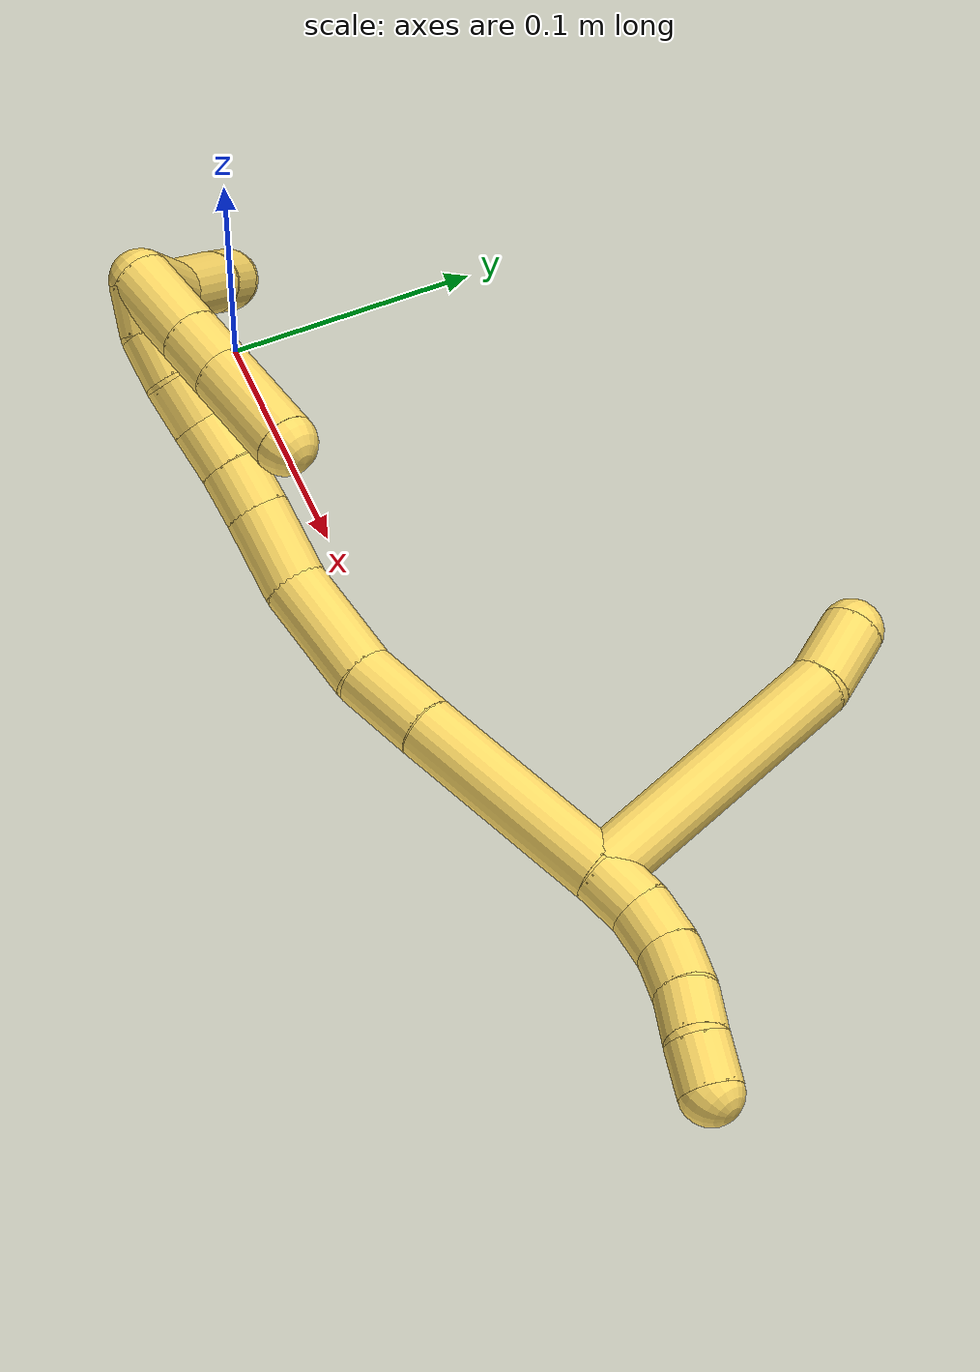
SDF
<sdf version="1.7">
 <world name="default">
  <model name="5">
   <static>0</static>
   <link name="5">
    <collision name="collision-cylinder-e_1_2_8">
     <pose>0.00365 0.059589 -0.008405 -1.71093 0.060584 -0.069723</pose>
     <geometry><cylinder><radius>0.0125</radius><length>0.120578</length></cylinder></geometry>
     <surface>
      <friction><ode><mu>1.16</mu><mu2>1.16</mu2><slip1>0</slip1><slip2>0</slip2></ode></friction>
      <contact><ode><kp>1e+06</kp><kd>1</kd><max_vel>0</max_vel><min_depth>0.001</min_depth></ode></contact>
     </surface>
    </collision>
    <visual name="visual-cylinder-e_1_2_8">
     <pose>0.00365 0.059589 -0.008405 -1.71093 0.060584 -0.069723</pose>
     <geometry><cylinder><radius>0.0125</radius><length>0.120578</length></cylinder></geometry>
     <material><ambient>1 0.858824 0.4 1</ambient></material>
    </visual>
    <collision name="collision-cylinder-e_2_8_6">
     <pose>0.008146 0.132563 -0.022854 -1.99487 0.057484 -0.088988</pose>
     <geometry><cylinder><radius>0.0125</radius><length>0.029422</length></cylinder></geometry>
     <surface>
      <friction><ode><mu>1.16</mu><mu2>1.16</mu2><slip1>0</slip1><slip2>0</slip2></ode></friction>
      <contact><ode><kp>1e+06</kp><kd>1</kd><max_vel>0</max_vel><min_depth>0.001</min_depth></ode></contact>
     </surface>
    </collision>
    <visual name="visual-cylinder-e_2_8_6">
     <pose>0.008146 0.132563 -0.022854 -1.99487 0.057484 -0.088988</pose>
     <geometry><cylinder><radius>0.0125</radius><length>0.029422</length></cylinder></geometry>
     <material><ambient>1 0.858824 0.4 1</ambient></material>
    </visual>
    <collision name="collision-cylinder-e_1_2_9">
     <pose>0.001621 0.00127 0.009786 -0.129015 0.162816 -0.010541</pose>
     <geometry><cylinder><radius>0.0125</radius><length>0.02</length></cylinder></geometry>
     <surface>
      <friction><ode><mu>1.16</mu><mu2>1.16</mu2><slip1>0</slip1><slip2>0</slip2></ode></friction>
      <contact><ode><kp>1e+06</kp><kd>1</kd><max_vel>0</max_vel><min_depth>0.001</min_depth></ode></contact>
     </surface>
    </collision>
    <visual name="visual-cylinder-e_1_2_9">
     <pose>0.001621 0.00127 0.009786 -0.129015 0.162816 -0.010541</pose>
     <geometry><cylinder><radius>0.0125</radius><length>0.02</length></cylinder></geometry>
     <material><ambient>1 0.858824 0.4 1</ambient></material>
    </visual>
    <collision name="collision-cylinder-e_2_9_10">
     <pose>0.003597 0.001166 0.02947 0.137873 0.035489 0.002451</pose>
     <geometry><cylinder><radius>0.0125</radius><length>0.02</length></cylinder></geometry>
     <surface>
      <friction><ode><mu>1.16</mu><mu2>1.16</mu2><slip1>0</slip1><slip2>0</slip2></ode></friction>
      <contact><ode><kp>1e+06</kp><kd>1</kd><max_vel>0</max_vel><min_depth>0.001</min_depth></ode></contact>
     </surface>
    </collision>
    <visual name="visual-cylinder-e_2_9_10">
     <pose>0.003597 0.001166 0.02947 0.137873 0.035489 0.002451</pose>
     <geometry><cylinder><radius>0.0125</radius><length>0.02</length></cylinder></geometry>
     <material><ambient>1 0.858824 0.4 1</ambient></material>
    </visual>
    <collision name="collision-cylinder-e_3_10_11">
     <pose>0.003022 -0.003811 0.048651 0.370248 -0.093076 -0.017442</pose>
     <geometry><cylinder><radius>0.0125</radius><length>0.02</length></cylinder></geometry>
     <surface>
      <friction><ode><mu>1.16</mu><mu2>1.16</mu2><slip1>0</slip1><slip2>0</slip2></ode></friction>
      <contact><ode><kp>1e+06</kp><kd>1</kd><max_vel>0</max_vel><min_depth>0.001</min_depth></ode></contact>
     </surface>
    </collision>
    <visual name="visual-cylinder-e_3_10_11">
     <pose>0.003022 -0.003811 0.048651 0.370248 -0.093076 -0.017442</pose>
     <geometry><cylinder><radius>0.0125</radius><length>0.02</length></cylinder></geometry>
     <material><ambient>1 0.858824 0.4 1</ambient></material>
    </visual>
    <collision name="collision-cylinder-e_4_11_12">
     <pose>0.001843 -0.012181 0.06672 0.497148 -0.025016 -0.00635</pose>
     <geometry><cylinder><radius>0.0125</radius><length>0.02</length></cylinder></geometry>
     <surface>
      <friction><ode><mu>1.16</mu><mu2>1.16</mu2><slip1>0</slip1><slip2>0</slip2></ode></friction>
      <contact><ode><kp>1e+06</kp><kd>1</kd><max_vel>0</max_vel><min_depth>0.001</min_depth></ode></contact>
     </surface>
    </collision>
    <visual name="visual-cylinder-e_4_11_12">
     <pose>0.001843 -0.012181 0.06672 0.497148 -0.025016 -0.00635</pose>
     <geometry><cylinder><radius>0.0125</radius><length>0.02</length></cylinder></geometry>
     <material><ambient>1 0.858824 0.4 1</ambient></material>
    </visual>
    <collision name="collision-cylinder-e_5_12_5">
     <pose>0.003853 -0.020887 0.084416 0.416185 0.228012 0.048345</pose>
     <geometry><cylinder><radius>0.0125</radius><length>0.02</length></cylinder></geometry>
     <surface>
      <friction><ode><mu>1.16</mu><mu2>1.16</mu2><slip1>0</slip1><slip2>0</slip2></ode></friction>
      <contact><ode><kp>1e+06</kp><kd>1</kd><max_vel>0</max_vel><min_depth>0.001</min_depth></ode></contact>
     </surface>
    </collision>
    <visual name="visual-cylinder-e_5_12_5">
     <pose>0.003853 -0.020887 0.084416 0.416185 0.228012 0.048345</pose>
     <geometry><cylinder><radius>0.0125</radius><length>0.02</length></cylinder></geometry>
     <material><ambient>1 0.858824 0.4 1</ambient></material>
    </visual>
    <collision name="collision-cylinder-e_1_2_13">
     <pose>-0.002311 -0.00653 -0.043559 2.99279 -0.052423 -0.676416</pose>
     <geometry><cylinder><radius>0.0125</radius><length>0.088213</length></cylinder></geometry>
     <surface>
      <friction><ode><mu>1.16</mu><mu2>1.16</mu2><slip1>0</slip1><slip2>0</slip2></ode></friction>
      <contact><ode><kp>1e+06</kp><kd>1</kd><max_vel>0</max_vel><min_depth>0.001</min_depth></ode></contact>
     </surface>
    </collision>
    <visual name="visual-cylinder-e_1_2_13">
     <pose>-0.002311 -0.00653 -0.043559 2.99279 -0.052423 -0.676416</pose>
     <geometry><cylinder><radius>0.0125</radius><length>0.088213</length></cylinder></geometry>
     <material><ambient>1 0.858824 0.4 1</ambient></material>
    </visual>
    <collision name="collision-cylinder-e_2_13_14">
     <pose>-0.004737 -0.014934 -0.103602 3.02842 -0.006889 -0.121462</pose>
     <geometry><cylinder><radius>0.0125</radius><length>0.03318</length></cylinder></geometry>
     <surface>
      <friction><ode><mu>1.16</mu><mu2>1.16</mu2><slip1>0</slip1><slip2>0</slip2></ode></friction>
      <contact><ode><kp>1e+06</kp><kd>1</kd><max_vel>0</max_vel><min_depth>0.001</min_depth></ode></contact>
     </surface>
    </collision>
    <visual name="visual-cylinder-e_2_13_14">
     <pose>-0.004737 -0.014934 -0.103602 3.02842 -0.006889 -0.121462</pose>
     <geometry><cylinder><radius>0.0125</radius><length>0.03318</length></cylinder></geometry>
     <material><ambient>1 0.858824 0.4 1</ambient></material>
    </visual>
    <collision name="collision-cylinder-e_3_14_15">
     <pose>-0.00688 -0.015476 -0.142974 -3.08349 -0.088273 1.97762</pose>
     <geometry><cylinder><radius>0.0125</radius><length>0.046031</length></cylinder></geometry>
     <surface>
      <friction><ode><mu>1.16</mu><mu2>1.16</mu2><slip1>0</slip1><slip2>0</slip2></ode></friction>
      <contact><ode><kp>1e+06</kp><kd>1</kd><max_vel>0</max_vel><min_depth>0.001</min_depth></ode></contact>
     </surface>
    </collision>
    <visual name="visual-cylinder-e_3_14_15">
     <pose>-0.00688 -0.015476 -0.142974 -3.08349 -0.088273 1.97762</pose>
     <geometry><cylinder><radius>0.0125</radius><length>0.046031</length></cylinder></geometry>
     <material><ambient>1 0.858824 0.4 1</ambient></material>
    </visual>
    <collision name="collision-cylinder-e_4_15_16">
     <pose>-0.014663 -0.011822 -0.1807 -2.98631 -0.365868 2.34543</pose>
     <geometry><cylinder><radius>0.0125</radius><length>0.032168</length></cylinder></geometry>
     <surface>
      <friction><ode><mu>1.16</mu><mu2>1.16</mu2><slip1>0</slip1><slip2>0</slip2></ode></friction>
      <contact><ode><kp>1e+06</kp><kd>1</kd><max_vel>0</max_vel><min_depth>0.001</min_depth></ode></contact>
     </surface>
    </collision>
    <visual name="visual-cylinder-e_4_15_16">
     <pose>-0.014663 -0.011822 -0.1807 -2.98631 -0.365868 2.34543</pose>
     <geometry><cylinder><radius>0.0125</radius><length>0.032168</length></cylinder></geometry>
     <material><ambient>1 0.858824 0.4 1</ambient></material>
    </visual>
    <collision name="collision-cylinder-e_5_16_17">
     <pose>-0.024208 -0.008428 -0.204795 -3.02646 -0.386361 2.56862</pose>
     <geometry><cylinder><radius>0.0125</radius><length>0.020119</length></cylinder></geometry>
     <surface>
      <friction><ode><mu>1.16</mu><mu2>1.16</mu2><slip1>0</slip1><slip2>0</slip2></ode></friction>
      <contact><ode><kp>1e+06</kp><kd>1</kd><max_vel>0</max_vel><min_depth>0.001</min_depth></ode></contact>
     </surface>
    </collision>
    <visual name="visual-cylinder-e_5_16_17">
     <pose>-0.024208 -0.008428 -0.204795 -3.02646 -0.386361 2.56862</pose>
     <geometry><cylinder><radius>0.0125</radius><length>0.020119</length></cylinder></geometry>
     <material><ambient>1 0.858824 0.4 1</ambient></material>
    </visual>
    <collision name="collision-cylinder-e_6_17_18">
     <pose>-0.031427 -0.00684 -0.223475 -3.08669 -0.348397 2.83203</pose>
     <geometry><cylinder><radius>0.0125</radius><length>0.020082</length></cylinder></geometry>
     <surface>
      <friction><ode><mu>1.16</mu><mu2>1.16</mu2><slip1>0</slip1><slip2>0</slip2></ode></friction>
      <contact><ode><kp>1e+06</kp><kd>1</kd><max_vel>0</max_vel><min_depth>0.001</min_depth></ode></contact>
     </surface>
    </collision>
    <visual name="visual-cylinder-e_6_17_18">
     <pose>-0.031427 -0.00684 -0.223475 -3.08669 -0.348397 2.83203</pose>
     <geometry><cylinder><radius>0.0125</radius><length>0.020082</length></cylinder></geometry>
     <material><ambient>1 0.858824 0.4 1</ambient></material>
    </visual>
    <collision name="collision-cylinder-e_7_18_19">
     <pose>-0.040089 -0.006297 -0.241469 -3.13867 -0.548303 3.13121</pose>
     <geometry><cylinder><radius>0.0125</radius><length>0.020087</length></cylinder></geometry>
     <surface>
      <friction><ode><mu>1.16</mu><mu2>1.16</mu2><slip1>0</slip1><slip2>0</slip2></ode></friction>
      <contact><ode><kp>1e+06</kp><kd>1</kd><max_vel>0</max_vel><min_depth>0.001</min_depth></ode></contact>
     </surface>
    </collision>
    <visual name="visual-cylinder-e_7_18_19">
     <pose>-0.040089 -0.006297 -0.241469 -3.13867 -0.548303 3.13121</pose>
     <geometry><cylinder><radius>0.0125</radius><length>0.020087</length></cylinder></geometry>
     <material><ambient>1 0.858824 0.4 1</ambient></material>
    </visual>
    <collision name="collision-cylinder-e_8_19_20">
     <pose>-0.049611 -0.00495 -0.259011 -2.99529 -0.441621 2.51048</pose>
     <geometry><cylinder><radius>0.0125</radius><length>0.02006</length></cylinder></geometry>
     <surface>
      <friction><ode><mu>1.16</mu><mu2>1.16</mu2><slip1>0</slip1><slip2>0</slip2></ode></friction>
      <contact><ode><kp>1e+06</kp><kd>1</kd><max_vel>0</max_vel><min_depth>0.001</min_depth></ode></contact>
     </surface>
    </collision>
    <visual name="visual-cylinder-e_8_19_20">
     <pose>-0.049611 -0.00495 -0.259011 -2.99529 -0.441621 2.51048</pose>
     <geometry><cylinder><radius>0.0125</radius><length>0.02006</length></cylinder></geometry>
     <material><ambient>1 0.858824 0.4 1</ambient></material>
    </visual>
    <collision name="collision-cylinder-e_9_20_1">
     <pose>-0.05982 -0.00041 -0.27541 -2.73279 -0.631556 2.0108</pose>
     <geometry><cylinder><radius>0.0125</radius><length>0.020059</length></cylinder></geometry>
     <surface>
      <friction><ode><mu>1.16</mu><mu2>1.16</mu2><slip1>0</slip1><slip2>0</slip2></ode></friction>
      <contact><ode><kp>1e+06</kp><kd>1</kd><max_vel>0</max_vel><min_depth>0.001</min_depth></ode></contact>
     </surface>
    </collision>
    <visual name="visual-cylinder-e_9_20_1">
     <pose>-0.05982 -0.00041 -0.27541 -2.73279 -0.631556 2.0108</pose>
     <geometry><cylinder><radius>0.0125</radius><length>0.020059</length></cylinder></geometry>
     <material><ambient>1 0.858824 0.4 1</ambient></material>
    </visual>
    <collision name="collision-cylinder-e_1_1_21">
     <pose>-0.066726 0.00179 -0.265336 0.058095 -0.056155 -0.001632</pose>
     <geometry><cylinder><radius>0.0125</radius><length>0.035117</length></cylinder></geometry>
     <surface>
      <friction><ode><mu>1.16</mu><mu2>1.16</mu2><slip1>0</slip1><slip2>0</slip2></ode></friction>
      <contact><ode><kp>1e+06</kp><kd>1</kd><max_vel>0</max_vel><min_depth>0.001</min_depth></ode></contact>
     </surface>
    </collision>
    <visual name="visual-cylinder-e_1_1_21">
     <pose>-0.066726 0.00179 -0.265336 0.058095 -0.056155 -0.001632</pose>
     <geometry><cylinder><radius>0.0125</radius><length>0.035117</length></cylinder></geometry>
     <material><ambient>1 0.858824 0.4 1</ambient></material>
    </visual>
    <collision name="collision-cylinder-e_2_21_22">
     <pose>-0.068355 0.000111 -0.236497 0.058195 -0.056591 -0.001648</pose>
     <geometry><cylinder><radius>0.0125</radius><length>0.022752</length></cylinder></geometry>
     <surface>
      <friction><ode><mu>1.16</mu><mu2>1.16</mu2><slip1>0</slip1><slip2>0</slip2></ode></friction>
      <contact><ode><kp>1e+06</kp><kd>1</kd><max_vel>0</max_vel><min_depth>0.001</min_depth></ode></contact>
     </surface>
    </collision>
    <visual name="visual-cylinder-e_2_21_22">
     <pose>-0.068355 0.000111 -0.236497 0.058195 -0.056591 -0.001648</pose>
     <geometry><cylinder><radius>0.0125</radius><length>0.022752</length></cylinder></geometry>
     <material><ambient>1 0.858824 0.4 1</ambient></material>
    </visual>
    <collision name="collision-cylinder-e_3_22_4">
     <pose>-0.070595 -0.001881 -0.204196 0.063441 -0.075859 -0.002408</pose>
     <geometry><cylinder><radius>0.0125</radius><length>0.042131</length></cylinder></geometry>
     <surface>
      <friction><ode><mu>1.16</mu><mu2>1.16</mu2><slip1>0</slip1><slip2>0</slip2></ode></friction>
      <contact><ode><kp>1e+06</kp><kd>1</kd><max_vel>0</max_vel><min_depth>0.001</min_depth></ode></contact>
     </surface>
    </collision>
    <visual name="visual-cylinder-e_3_22_4">
     <pose>-0.070595 -0.001881 -0.204196 0.063441 -0.075859 -0.002408</pose>
     <geometry><cylinder><radius>0.0125</radius><length>0.042131</length></cylinder></geometry>
     <material><ambient>1 0.858824 0.4 1</ambient></material>
    </visual>
    <collision name="collision-cylinder-e_1_1_23">
     <pose>-0.048021 0.013085 -0.289171 -2.12307 0.972735 -1.51625</pose>
     <geometry><cylinder><radius>0.0125</radius><length>0.042882</length></cylinder></geometry>
     <surface>
      <friction><ode><mu>1.16</mu><mu2>1.16</mu2><slip1>0</slip1><slip2>0</slip2></ode></friction>
      <contact><ode><kp>1e+06</kp><kd>1</kd><max_vel>0</max_vel><min_depth>0.001</min_depth></ode></contact>
     </surface>
    </collision>
    <visual name="visual-cylinder-e_1_1_23">
     <pose>-0.048021 0.013085 -0.289171 -2.12307 0.972735 -1.51625</pose>
     <geometry><cylinder><radius>0.0125</radius><length>0.042882</length></cylinder></geometry>
     <material><ambient>1 0.858824 0.4 1</ambient></material>
    </visual>
    <collision name="collision-cylinder-e_2_23_24">
     <pose>-0.018103 0.036029 -0.300817 -1.96793 0.726204 -1.03821</pose>
     <geometry><cylinder><radius>0.0125</radius><length>0.036741</length></cylinder></geometry>
     <surface>
      <friction><ode><mu>1.16</mu><mu2>1.16</mu2><slip1>0</slip1><slip2>0</slip2></ode></friction>
      <contact><ode><kp>1e+06</kp><kd>1</kd><max_vel>0</max_vel><min_depth>0.001</min_depth></ode></contact>
     </surface>
    </collision>
    <visual name="visual-cylinder-e_2_23_24">
     <pose>-0.018103 0.036029 -0.300817 -1.96793 0.726204 -1.03821</pose>
     <geometry><cylinder><radius>0.0125</radius><length>0.036741</length></cylinder></geometry>
     <material><ambient>1 0.858824 0.4 1</ambient></material>
    </visual>
    <collision name="collision-cylinder-e_3_24_3">
     <pose>0.001347 0.055029 -0.309463 -2.05526 0.792002 -1.21134</pose>
     <geometry><cylinder><radius>0.0125</radius><length>0.020377</length></cylinder></geometry>
     <surface>
      <friction><ode><mu>1.16</mu><mu2>1.16</mu2><slip1>0</slip1><slip2>0</slip2></ode></friction>
      <contact><ode><kp>1e+06</kp><kd>1</kd><max_vel>0</max_vel><min_depth>0.001</min_depth></ode></contact>
     </surface>
    </collision>
    <visual name="visual-cylinder-e_3_24_3">
     <pose>0.001347 0.055029 -0.309463 -2.05526 0.792002 -1.21134</pose>
     <geometry><cylinder><radius>0.0125</radius><length>0.020377</length></cylinder></geometry>
     <material><ambient>1 0.858824 0.4 1</ambient></material>
    </visual>
    <collision name="collision-sphere-3">
     <pose>0.008599 0.061362 -0.312796 0 -0 0</pose>
     <geometry><sphere><radius>0.0125</radius></sphere></geometry>
     <surface>
      <friction><ode><mu>1.16</mu><mu2>1.16</mu2><slip1>0</slip1><slip2>0</slip2></ode></friction>
      <contact><ode><kp>1e+06</kp><kd>1</kd><max_vel>0</max_vel><min_depth>0.001</min_depth></ode></contact>
     </surface>
    </collision>
    <visual name="visual-sphere-3">
     <pose>0.008599 0.061362 -0.312796 0 -0 0</pose>
     <geometry><sphere><radius>0.0125</radius></sphere></geometry>
     <material><ambient>1 0.858824 0.4 1</ambient></material>
    </visual>
    <collision name="collision-sphere-24">
     <pose>-0.005905 0.048695 -0.30613 0 -0 0</pose>
     <geometry><sphere><radius>0.0125</radius></sphere></geometry>
     <surface>
      <friction><ode><mu>1.16</mu><mu2>1.16</mu2><slip1>0</slip1><slip2>0</slip2></ode></friction>
      <contact><ode><kp>1e+06</kp><kd>1</kd><max_vel>0</max_vel><min_depth>0.001</min_depth></ode></contact>
     </surface>
    </collision>
    <visual name="visual-sphere-24">
     <pose>-0.005905 0.048695 -0.30613 0 -0 0</pose>
     <geometry><sphere><radius>0.0125</radius></sphere></geometry>
     <material><ambient>1 0.858824 0.4 1</ambient></material>
    </visual>
    <collision name="collision-sphere-23">
     <pose>-0.030302 0.023362 -0.295504 0 -0 0</pose>
     <geometry><sphere><radius>0.0125</radius></sphere></geometry>
     <surface>
      <friction><ode><mu>1.16</mu><mu2>1.16</mu2><slip1>0</slip1><slip2>0</slip2></ode></friction>
      <contact><ode><kp>1e+06</kp><kd>1</kd><max_vel>0</max_vel><min_depth>0.001</min_depth></ode></contact>
     </surface>
    </collision>
    <visual name="visual-sphere-23">
     <pose>-0.030302 0.023362 -0.295504 0 -0 0</pose>
     <geometry><sphere><radius>0.0125</radius></sphere></geometry>
     <material><ambient>1 0.858824 0.4 1</ambient></material>
    </visual>
    <collision name="collision-sphere-4">
     <pose>-0.072192 -0.003213 -0.183233 0 -0 0</pose>
     <geometry><sphere><radius>0.0125</radius></sphere></geometry>
     <surface>
      <friction><ode><mu>1.16</mu><mu2>1.16</mu2><slip1>0</slip1><slip2>0</slip2></ode></friction>
      <contact><ode><kp>1e+06</kp><kd>1</kd><max_vel>0</max_vel><min_depth>0.001</min_depth></ode></contact>
     </surface>
    </collision>
    <visual name="visual-sphere-4">
     <pose>-0.072192 -0.003213 -0.183233 0 -0 0</pose>
     <geometry><sphere><radius>0.0125</radius></sphere></geometry>
     <material><ambient>1 0.858824 0.4 1</ambient></material>
    </visual>
    <collision name="collision-sphere-22">
     <pose>-0.068999 -0.00055 -0.225158 0 -0 0</pose>
     <geometry><sphere><radius>0.0125</radius></sphere></geometry>
     <surface>
      <friction><ode><mu>1.16</mu><mu2>1.16</mu2><slip1>0</slip1><slip2>0</slip2></ode></friction>
      <contact><ode><kp>1e+06</kp><kd>1</kd><max_vel>0</max_vel><min_depth>0.001</min_depth></ode></contact>
     </surface>
    </collision>
    <visual name="visual-sphere-22">
     <pose>-0.068999 -0.00055 -0.225158 0 -0 0</pose>
     <geometry><sphere><radius>0.0125</radius></sphere></geometry>
     <material><ambient>1 0.858824 0.4 1</ambient></material>
    </visual>
    <collision name="collision-sphere-21">
     <pose>-0.067712 0.000772 -0.247835 0 -0 0</pose>
     <geometry><sphere><radius>0.0125</radius></sphere></geometry>
     <surface>
      <friction><ode><mu>1.16</mu><mu2>1.16</mu2><slip1>0</slip1><slip2>0</slip2></ode></friction>
      <contact><ode><kp>1e+06</kp><kd>1</kd><max_vel>0</max_vel><min_depth>0.001</min_depth></ode></contact>
     </surface>
    </collision>
    <visual name="visual-sphere-21">
     <pose>-0.067712 0.000772 -0.247835 0 -0 0</pose>
     <geometry><sphere><radius>0.0125</radius></sphere></geometry>
     <material><ambient>1 0.858824 0.4 1</ambient></material>
    </visual>
    <collision name="collision-sphere-1">
     <pose>-0.065741 0.002807 -0.282838 0 -0 0</pose>
     <geometry><sphere><radius>0.0125</radius></sphere></geometry>
     <surface>
      <friction><ode><mu>1.16</mu><mu2>1.16</mu2><slip1>0</slip1><slip2>0</slip2></ode></friction>
      <contact><ode><kp>1e+06</kp><kd>1</kd><max_vel>0</max_vel><min_depth>0.001</min_depth></ode></contact>
     </surface>
    </collision>
    <visual name="visual-sphere-1">
     <pose>-0.065741 0.002807 -0.282838 0 -0 0</pose>
     <geometry><sphere><radius>0.0125</radius></sphere></geometry>
     <material><ambient>1 0.858824 0.4 1</ambient></material>
    </visual>
    <collision name="collision-sphere-11">
     <pose>0.002093 -0.007413 0.057933 0 -0 0</pose>
     <geometry><sphere><radius>0.0125</radius></sphere></geometry>
     <surface>
      <friction><ode><mu>1.16</mu><mu2>1.16</mu2><slip1>0</slip1><slip2>0</slip2></ode></friction>
      <contact><ode><kp>1e+06</kp><kd>1</kd><max_vel>0</max_vel><min_depth>0.001</min_depth></ode></contact>
     </surface>
    </collision>
    <visual name="visual-sphere-11">
     <pose>0.002093 -0.007413 0.057933 0 -0 0</pose>
     <geometry><sphere><radius>0.0125</radius></sphere></geometry>
     <material><ambient>1 0.858824 0.4 1</ambient></material>
    </visual>
    <collision name="collision-sphere-10">
     <pose>0.003952 -0.000208 0.039369 0 -0 0</pose>
     <geometry><sphere><radius>0.0125</radius></sphere></geometry>
     <surface>
      <friction><ode><mu>1.16</mu><mu2>1.16</mu2><slip1>0</slip1><slip2>0</slip2></ode></friction>
      <contact><ode><kp>1e+06</kp><kd>1</kd><max_vel>0</max_vel><min_depth>0.001</min_depth></ode></contact>
     </surface>
    </collision>
    <visual name="visual-sphere-10">
     <pose>0.003952 -0.000208 0.039369 0 -0 0</pose>
     <geometry><sphere><radius>0.0125</radius></sphere></geometry>
     <material><ambient>1 0.858824 0.4 1</ambient></material>
    </visual>
    <collision name="collision-sphere-6">
     <pose>0.008991 0.145949 -0.028897 0 -0 0</pose>
     <geometry><sphere><radius>0.0125</radius></sphere></geometry>
     <surface>
      <friction><ode><mu>1.16</mu><mu2>1.16</mu2><slip1>0</slip1><slip2>0</slip2></ode></friction>
      <contact><ode><kp>1e+06</kp><kd>1</kd><max_vel>0</max_vel><min_depth>0.001</min_depth></ode></contact>
     </surface>
    </collision>
    <visual name="visual-sphere-6">
     <pose>0.008991 0.145949 -0.028897 0 -0 0</pose>
     <geometry><sphere><radius>0.0125</radius></sphere></geometry>
     <material><ambient>1 0.858824 0.4 1</ambient></material>
    </visual>
    <collision name="collision-sphere-9">
     <pose>0.003242 0.002539 0.019571 0 -0 0</pose>
     <geometry><sphere><radius>0.0125</radius></sphere></geometry>
     <surface>
      <friction><ode><mu>1.16</mu><mu2>1.16</mu2><slip1>0</slip1><slip2>0</slip2></ode></friction>
      <contact><ode><kp>1e+06</kp><kd>1</kd><max_vel>0</max_vel><min_depth>0.001</min_depth></ode></contact>
     </surface>
    </collision>
    <visual name="visual-sphere-9">
     <pose>0.003242 0.002539 0.019571 0 -0 0</pose>
     <geometry><sphere><radius>0.0125</radius></sphere></geometry>
     <material><ambient>1 0.858824 0.4 1</ambient></material>
    </visual>
    <collision name="collision-sphere-2">
     <geometry><sphere><radius>0.0125</radius></sphere></geometry>
     <surface>
      <friction><ode><mu>1.16</mu><mu2>1.16</mu2><slip1>0</slip1><slip2>0</slip2></ode></friction>
      <contact><ode><kp>1e+06</kp><kd>1</kd><max_vel>0</max_vel><min_depth>0.001</min_depth></ode></contact>
     </surface>
    </collision>
    <visual name="visual-sphere-2">
     <geometry><sphere><radius>0.0125</radius></sphere></geometry>
     <material><ambient>1 0.858824 0.4 1</ambient></material>
    </visual>
    <collision name="collision-sphere-19">
     <pose>-0.045324 -0.006272 -0.25004 0 -0 0</pose>
     <geometry><sphere><radius>0.0125</radius></sphere></geometry>
     <surface>
      <friction><ode><mu>1.16</mu><mu2>1.16</mu2><slip1>0</slip1><slip2>0</slip2></ode></friction>
      <contact><ode><kp>1e+06</kp><kd>1</kd><max_vel>0</max_vel><min_depth>0.001</min_depth></ode></contact>
     </surface>
    </collision>
    <visual name="visual-sphere-19">
     <pose>-0.045324 -0.006272 -0.25004 0 -0 0</pose>
     <geometry><sphere><radius>0.0125</radius></sphere></geometry>
     <material><ambient>1 0.858824 0.4 1</ambient></material>
    </visual>
    <collision name="collision-sphere-8">
     <pose>0.007301 0.119177 -0.01681 0 -0 0</pose>
     <geometry><sphere><radius>0.0125</radius></sphere></geometry>
     <surface>
      <friction><ode><mu>1.16</mu><mu2>1.16</mu2><slip1>0</slip1><slip2>0</slip2></ode></friction>
      <contact><ode><kp>1e+06</kp><kd>1</kd><max_vel>0</max_vel><min_depth>0.001</min_depth></ode></contact>
     </surface>
    </collision>
    <visual name="visual-sphere-8">
     <pose>0.007301 0.119177 -0.01681 0 -0 0</pose>
     <geometry><sphere><radius>0.0125</radius></sphere></geometry>
     <material><ambient>1 0.858824 0.4 1</ambient></material>
    </visual>
    <collision name="collision-sphere-12">
     <pose>0.001592 -0.016949 0.075507 0 -0 0</pose>
     <geometry><sphere><radius>0.0125</radius></sphere></geometry>
     <surface>
      <friction><ode><mu>1.16</mu><mu2>1.16</mu2><slip1>0</slip1><slip2>0</slip2></ode></friction>
      <contact><ode><kp>1e+06</kp><kd>1</kd><max_vel>0</max_vel><min_depth>0.001</min_depth></ode></contact>
     </surface>
    </collision>
    <visual name="visual-sphere-12">
     <pose>0.001592 -0.016949 0.075507 0 -0 0</pose>
     <geometry><sphere><radius>0.0125</radius></sphere></geometry>
     <material><ambient>1 0.858824 0.4 1</ambient></material>
    </visual>
    <collision name="collision-sphere-5">
     <pose>0.006113 -0.024825 0.093326 0 -0 0</pose>
     <geometry><sphere><radius>0.0125</radius></sphere></geometry>
     <surface>
      <friction><ode><mu>1.16</mu><mu2>1.16</mu2><slip1>0</slip1><slip2>0</slip2></ode></friction>
      <contact><ode><kp>1e+06</kp><kd>1</kd><max_vel>0</max_vel><min_depth>0.001</min_depth></ode></contact>
     </surface>
    </collision>
    <visual name="visual-sphere-5">
     <pose>0.006113 -0.024825 0.093326 0 -0 0</pose>
     <geometry><sphere><radius>0.0125</radius></sphere></geometry>
     <material><ambient>1 0.858824 0.4 1</ambient></material>
    </visual>
    <collision name="collision-sphere-13">
     <pose>-0.004622 -0.01306 -0.087119 0 -0 0</pose>
     <geometry><sphere><radius>0.0125</radius></sphere></geometry>
     <surface>
      <friction><ode><mu>1.16</mu><mu2>1.16</mu2><slip1>0</slip1><slip2>0</slip2></ode></friction>
      <contact><ode><kp>1e+06</kp><kd>1</kd><max_vel>0</max_vel><min_depth>0.001</min_depth></ode></contact>
     </surface>
    </collision>
    <visual name="visual-sphere-13">
     <pose>-0.004622 -0.01306 -0.087119 0 -0 0</pose>
     <geometry><sphere><radius>0.0125</radius></sphere></geometry>
     <material><ambient>1 0.858824 0.4 1</ambient></material>
    </visual>
    <collision name="collision-sphere-14">
     <pose>-0.004851 -0.016807 -0.120086 0 -0 0</pose>
     <geometry><sphere><radius>0.0125</radius></sphere></geometry>
     <surface>
      <friction><ode><mu>1.16</mu><mu2>1.16</mu2><slip1>0</slip1><slip2>0</slip2></ode></friction>
      <contact><ode><kp>1e+06</kp><kd>1</kd><max_vel>0</max_vel><min_depth>0.001</min_depth></ode></contact>
     </surface>
    </collision>
    <visual name="visual-sphere-14">
     <pose>-0.004851 -0.016807 -0.120086 0 -0 0</pose>
     <geometry><sphere><radius>0.0125</radius></sphere></geometry>
     <material><ambient>1 0.858824 0.4 1</ambient></material>
    </visual>
    <collision name="collision-sphere-15">
     <pose>-0.008909 -0.014145 -0.165861 0 -0 0</pose>
     <geometry><sphere><radius>0.0125</radius></sphere></geometry>
     <surface>
      <friction><ode><mu>1.16</mu><mu2>1.16</mu2><slip1>0</slip1><slip2>0</slip2></ode></friction>
      <contact><ode><kp>1e+06</kp><kd>1</kd><max_vel>0</max_vel><min_depth>0.001</min_depth></ode></contact>
     </surface>
    </collision>
    <visual name="visual-sphere-15">
     <pose>-0.008909 -0.014145 -0.165861 0 -0 0</pose>
     <geometry><sphere><radius>0.0125</radius></sphere></geometry>
     <material><ambient>1 0.858824 0.4 1</ambient></material>
    </visual>
    <collision name="collision-sphere-16">
     <pose>-0.020417 -0.009499 -0.195539 0 -0 0</pose>
     <geometry><sphere><radius>0.0125</radius></sphere></geometry>
     <surface>
      <friction><ode><mu>1.16</mu><mu2>1.16</mu2><slip1>0</slip1><slip2>0</slip2></ode></friction>
      <contact><ode><kp>1e+06</kp><kd>1</kd><max_vel>0</max_vel><min_depth>0.001</min_depth></ode></contact>
     </surface>
    </collision>
    <visual name="visual-sphere-16">
     <pose>-0.020417 -0.009499 -0.195539 0 -0 0</pose>
     <geometry><sphere><radius>0.0125</radius></sphere></geometry>
     <material><ambient>1 0.858824 0.4 1</ambient></material>
    </visual>
    <collision name="collision-sphere-17">
     <pose>-0.027999 -0.007358 -0.214051 0 -0 0</pose>
     <geometry><sphere><radius>0.0125</radius></sphere></geometry>
     <surface>
      <friction><ode><mu>1.16</mu><mu2>1.16</mu2><slip1>0</slip1><slip2>0</slip2></ode></friction>
      <contact><ode><kp>1e+06</kp><kd>1</kd><max_vel>0</max_vel><min_depth>0.001</min_depth></ode></contact>
     </surface>
    </collision>
    <visual name="visual-sphere-17">
     <pose>-0.027999 -0.007358 -0.214051 0 -0 0</pose>
     <geometry><sphere><radius>0.0125</radius></sphere></geometry>
     <material><ambient>1 0.858824 0.4 1</ambient></material>
    </visual>
    <collision name="collision-sphere-18">
     <pose>-0.034854 -0.006322 -0.232898 0 -0 0</pose>
     <geometry><sphere><radius>0.0125</radius></sphere></geometry>
     <surface>
      <friction><ode><mu>1.16</mu><mu2>1.16</mu2><slip1>0</slip1><slip2>0</slip2></ode></friction>
      <contact><ode><kp>1e+06</kp><kd>1</kd><max_vel>0</max_vel><min_depth>0.001</min_depth></ode></contact>
     </surface>
    </collision>
    <visual name="visual-sphere-18">
     <pose>-0.034854 -0.006322 -0.232898 0 -0 0</pose>
     <geometry><sphere><radius>0.0125</radius></sphere></geometry>
     <material><ambient>1 0.858824 0.4 1</ambient></material>
    </visual>
    <collision name="collision-sphere-20">
     <pose>-0.053898 -0.003628 -0.267982 0 -0 0</pose>
     <geometry><sphere><radius>0.0125</radius></sphere></geometry>
     <surface>
      <friction><ode><mu>1.16</mu><mu2>1.16</mu2><slip1>0</slip1><slip2>0</slip2></ode></friction>
      <contact><ode><kp>1e+06</kp><kd>1</kd><max_vel>0</max_vel><min_depth>0.001</min_depth></ode></contact>
     </surface>
    </collision>
    <visual name="visual-sphere-20">
     <pose>-0.053898 -0.003628 -0.267982 0 -0 0</pose>
     <geometry><sphere><radius>0.0125</radius></sphere></geometry>
     <material><ambient>1 0.858824 0.4 1</ambient></material>
    </visual>
    <inertial>
     <pose>-0.018505 0.014245 -0.12509 0 -0 0</pose>
     <mass>0.75</mass>
     <inertia>
      <ixx>0.000175</ixx>
      <ixy>0</ixy>
      <ixz>0</ixz>
      <iyy>-6e-05</iyy>
      <iyz>0</iyz>
      <izz>-0.000174</izz>
     </inertia>
    </inertial>
   </link>
   <pose>0.292004 0.031992 0.019229 2.09139 1.56216 2.36394</pose>
  </model>
 </world>
</sdf>
